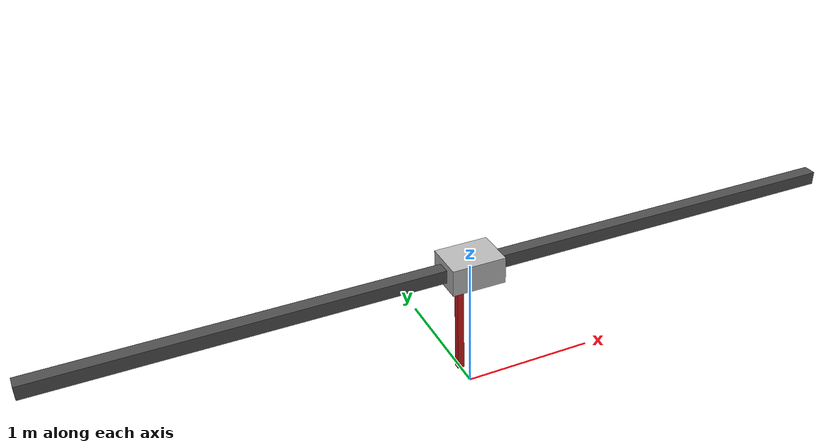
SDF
<?xml version="1.0"?>
<sdf version="1.8">
  <model name="cartpole">

    <!-- ================= SLIDER (FIXED TO WORLD) ================= -->
    <link name="rail">
      <pose>0 0 1.0 0 0 0</pose>
      <inertial>
        <mass>1.0</mass>
        <inertia>
          <ixx>0.01</ixx><iyy>0.01</iyy><izz>0.01</izz>
        </inertia>
      </inertial>
      <visual name="vis">
        <geometry>
          <box><size>6 0.1 0.1</size></box>
        </geometry>
        <material>
          <ambient>0.3 0.3 0.3 1</ambient>
          <diffuse>0.3 0.3 0.3 1</diffuse>
          <specular>0.1 0.1 0.1 1</specular>
        </material>
      </visual>
    </link>

    <joint name="rail_fixed" type="fixed">
      <parent>world</parent>
      <child>rail</child>
    </joint>

    <!-- ================= CART ================= -->
    <link name="cart">
      <pose>0 0 1.0 0 0 0</pose>
      <inertial>
        <mass>2.0</mass>
        <inertia>
          <ixx>0.05</ixx><iyy>0.05</iyy><izz>0.05</izz>
        </inertia>
      </inertial>

      <visual name="vis">
        <geometry>
          <box><size>0.4 0.3 0.2</size></box>
        </geometry>
      </visual>

      <collision name="col">
        <geometry>
          <box><size>0.4 0.3 0.2</size></box>
        </geometry>
      </collision>
    </link>

    <!-- PRISMATIC JOINT (THIS **WILL MOVE** WITH CONTROLLER) -->
    <joint name="cart_slide" type="prismatic">
      <parent>rail</parent>
      <child>cart</child>
      <pose>0 0 0 0 0 0</pose>
      <axis>
        <xyz>1 0 0</xyz>
        <limit>
          <lower>-3</lower>
          <upper>3</upper>
          <effort>500</effort>
          <velocity>15</velocity>
        </limit>
        <dynamics>
          <damping>0.1</damping>
          <friction>0.0</friction>
        </dynamics>
      </axis>
    </joint>

    <!-- ================= POLE ================= -->
    <link name="pole">
      <!-- Pole frame located at the hinge, relative to the cart -->
      <pose relative_to="cart">0 0.175 0 0 0 0</pose>

      <inertial>
        <!-- COM is L/2 below the hinge -->
        <pose>0 0 -0.5 0 0 0</pose>
        <mass>0.3</mass>
        <inertia>
          <ixx>0.025</ixx>
          <iyy>0.025</iyy>
          <izz>0.000125</izz>
        </inertia>
      </inertial>

      <visual name="vis">
        <!-- Shift geometry DOWN so the top touches the hinge -->
        <pose>0 0 -0.5 0 0 0</pose>
        <geometry>
          <box><size>0.05 0.05 1.0</size></box>
        </geometry>
        <material>
          <ambient>0.8 0.1 0.1 1</ambient>
          <diffuse>0.8 0.1 0.1 1</diffuse>
          <specular>0.1 0.1 0.1 1</specular>
        </material>
      </visual>

      <collision name="col">
        <pose>0 0 -0.5 0 0 0</pose>
        <geometry>
          <box><size>0.05 0.05 1.0</size></box>
        </geometry>
      </collision>
    </link>

    <!-- ================= POLE HINGE ================= -->
    <joint name="pole_hinge" type="revolute">
      <parent>cart</parent>
      <child>pole</child>

      <!-- Joint frame coincides with pole link frame -->
      <pose>0 0 0 0 0 0</pose>

      <axis>
        <xyz>0 1 0</xyz>
        <limit>
          <effort>100</effort>
          <velocity>10</velocity>
        </limit>
        <dynamics>
          <damping>0.1</damping>
          <friction>0.0</friction>
        </dynamics>
      </axis>
    </joint>

    <!-- ================= ROS2 CONTROL ================= -->
    <plugin
      filename="libgz_ros2_control-system.so"
      name="gz_ros2_control::GazeboSimROS2ControlPlugin">
      <parameters>/home/mypc/cartpole_ws/install/cartpole_bringup/share/cartpole_bringup/config/ros2_control.yaml</parameters>
    </plugin>

    <ros2_control name="CartPoleSystem" type="system">
      <hardware>
        <plugin>gz_ros2_control/GazeboSimSystem</plugin>
      </hardware>
      <joint name="cart_slide">
        <command_interface name="velocity">
          <param name="min">-15</param>
          <param name="max">15</param>
        </command_interface>
        <state_interface name="position"/>
        <state_interface name="velocity"/>
      </joint>
    </ros2_control>

  </model>
</sdf>
